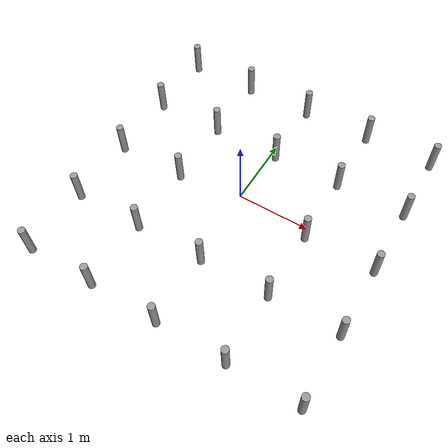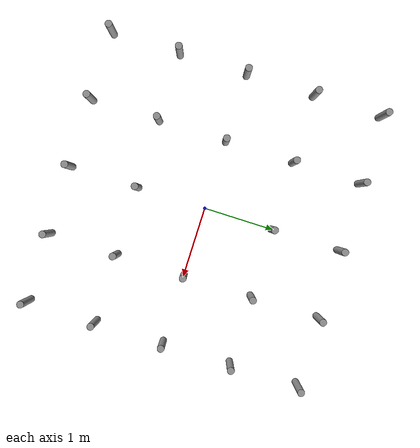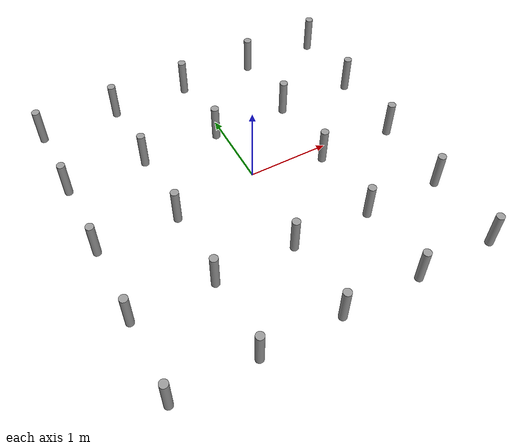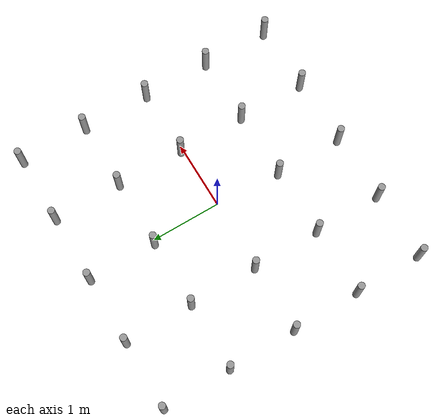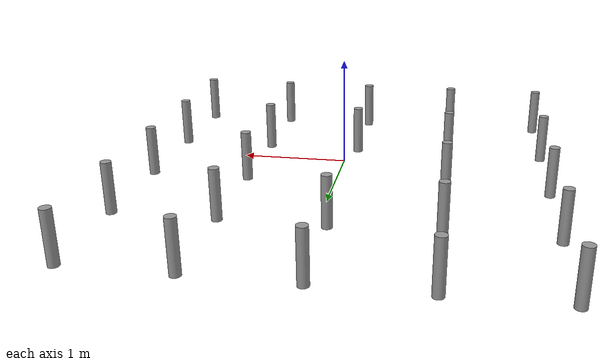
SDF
<sdf version="1.6">
 <model name="obstacles">
  <link name="link_0_clone">
   <inertial>
    <mass>1</mass>
    <inertia><ixx>0.145833</ixx><ixy>0</ixy><ixz>0</ixz><iyy>0.145833</iyy><iyz>0</iyz><izz>0.125</izz></inertia>
   </inertial>
   <pose>-2 0 0 0 -0 0</pose>
   <visual name="visual">
    <geometry><cylinder><radius>0.05</radius><length>0.5</length></cylinder></geometry>
    <material>
     <lighting>1</lighting>
     <script><uri>file://media/materials/scripts/gazebo.material</uri><name>Gazebo/Grey</name></script>
     <shader type="vertex"><normal_map>__default__</normal_map></shader>
     <ambient>0.3 0.3 0.3 1</ambient>
     <diffuse>0.7 0.7 0.7 1</diffuse>
     <specular>0.01 0.01 0.01 1</specular>
     <emissive>0 0 0 1</emissive>
    </material>
   </visual>
   <collision name="collision">
    <geometry><cylinder><radius>0.05</radius><length>0.5</length></cylinder></geometry>
    <surface>
     <friction>
      <ode><mu>1</mu><mu2>1</mu2><fdir1>0 0 0</fdir1><slip1>0</slip1><slip2>0</slip2></ode>
      <torsional>
       <coefficient>1</coefficient>
       <patch_radius>0</patch_radius>
       <surface_radius>0</surface_radius>
       <use_patch_radius>1</use_patch_radius>
       <ode><slip>0</slip></ode>
      </torsional>
     </friction>
     <bounce><restitution_coefficient>0</restitution_coefficient><threshold>1e+06</threshold></bounce>
     <contact>
      <collide_without_contact>0</collide_without_contact>
      <collide_without_contact_bitmask>1</collide_without_contact_bitmask>
      <collide_bitmask>1</collide_bitmask>
      <ode>
       <soft_cfm>0</soft_cfm>
       <soft_erp>0.2</soft_erp>
       <kp>1e+13</kp>
       <kd>1</kd>
       <max_vel>0.01</max_vel>
       <min_depth>0</min_depth>
      </ode>
      <bullet>
       <split_impulse>1</split_impulse>
       <split_impulse_penetration_threshold>-0.01</split_impulse_penetration_threshold>
       <soft_cfm>0</soft_cfm>
       <soft_erp>0.2</soft_erp>
       <kp>1e+13</kp>
       <kd>1</kd>
      </bullet>
     </contact>
    </surface>
   </collision>
  </link>
  <link name="link_0_clone_0">
   <inertial>
    <mass>1</mass>
    <inertia><ixx>0.145833</ixx><ixy>0</ixy><ixz>0</ixz><iyy>0.145833</iyy><iyz>0</iyz><izz>0.125</izz></inertia>
   </inertial>
   <pose>-1 0 0 0 -0 0</pose>
   <visual name="visual">
    <geometry><cylinder><radius>0.05</radius><length>0.5</length></cylinder></geometry>
    <material>
     <lighting>1</lighting>
     <script><uri>file://media/materials/scripts/gazebo.material</uri><name>Gazebo/Grey</name></script>
     <shader type="vertex"><normal_map>__default__</normal_map></shader>
     <ambient>0.3 0.3 0.3 1</ambient>
     <diffuse>0.7 0.7 0.7 1</diffuse>
     <specular>0.01 0.01 0.01 1</specular>
     <emissive>0 0 0 1</emissive>
    </material>
   </visual>
   <collision name="collision">
    <geometry><cylinder><radius>0.05</radius><length>0.5</length></cylinder></geometry>
    <surface>
     <friction>
      <ode><mu>1</mu><mu2>1</mu2><fdir1>0 0 0</fdir1><slip1>0</slip1><slip2>0</slip2></ode>
      <torsional>
       <coefficient>1</coefficient>
       <patch_radius>0</patch_radius>
       <surface_radius>0</surface_radius>
       <use_patch_radius>1</use_patch_radius>
       <ode><slip>0</slip></ode>
      </torsional>
     </friction>
     <bounce><restitution_coefficient>0</restitution_coefficient><threshold>1e+06</threshold></bounce>
     <contact>
      <collide_without_contact>0</collide_without_contact>
      <collide_without_contact_bitmask>1</collide_without_contact_bitmask>
      <collide_bitmask>1</collide_bitmask>
      <ode>
       <soft_cfm>0</soft_cfm>
       <soft_erp>0.2</soft_erp>
       <kp>1e+13</kp>
       <kd>1</kd>
       <max_vel>0.01</max_vel>
       <min_depth>0</min_depth>
      </ode>
      <bullet>
       <split_impulse>1</split_impulse>
       <split_impulse_penetration_threshold>-0.01</split_impulse_penetration_threshold>
       <soft_cfm>0</soft_cfm>
       <soft_erp>0.2</soft_erp>
       <kp>1e+13</kp>
       <kd>1</kd>
      </bullet>
     </contact>
    </surface>
   </collision>
  </link>
  <link name="link_0_clone_1">
   <inertial>
    <mass>1</mass>
    <inertia><ixx>0.145833</ixx><ixy>0</ixy><ixz>0</ixz><iyy>0.145833</iyy><iyz>0</iyz><izz>0.125</izz></inertia>
   </inertial>
   <pose>-2 -1 0 0 -0 0</pose>
   <visual name="visual">
    <geometry><cylinder><radius>0.05</radius><length>0.5</length></cylinder></geometry>
    <material>
     <lighting>1</lighting>
     <script><uri>file://media/materials/scripts/gazebo.material</uri><name>Gazebo/Grey</name></script>
     <shader type="vertex"><normal_map>__default__</normal_map></shader>
     <ambient>0.3 0.3 0.3 1</ambient>
     <diffuse>0.7 0.7 0.7 1</diffuse>
     <specular>0.01 0.01 0.01 1</specular>
     <emissive>0 0 0 1</emissive>
    </material>
   </visual>
   <collision name="collision">
    <geometry><cylinder><radius>0.05</radius><length>0.5</length></cylinder></geometry>
    <surface>
     <friction>
      <ode><mu>1</mu><mu2>1</mu2><fdir1>0 0 0</fdir1><slip1>0</slip1><slip2>0</slip2></ode>
      <torsional>
       <coefficient>1</coefficient>
       <patch_radius>0</patch_radius>
       <surface_radius>0</surface_radius>
       <use_patch_radius>1</use_patch_radius>
       <ode><slip>0</slip></ode>
      </torsional>
     </friction>
     <bounce><restitution_coefficient>0</restitution_coefficient><threshold>1e+06</threshold></bounce>
     <contact>
      <collide_without_contact>0</collide_without_contact>
      <collide_without_contact_bitmask>1</collide_without_contact_bitmask>
      <collide_bitmask>1</collide_bitmask>
      <ode>
       <soft_cfm>0</soft_cfm>
       <soft_erp>0.2</soft_erp>
       <kp>1e+13</kp>
       <kd>1</kd>
       <max_vel>0.01</max_vel>
       <min_depth>0</min_depth>
      </ode>
      <bullet>
       <split_impulse>1</split_impulse>
       <split_impulse_penetration_threshold>-0.01</split_impulse_penetration_threshold>
       <soft_cfm>0</soft_cfm>
       <soft_erp>0.2</soft_erp>
       <kp>1e+13</kp>
       <kd>1</kd>
      </bullet>
     </contact>
    </surface>
   </collision>
  </link>
  <link name="link_0_clone_10">
   <inertial>
    <mass>1</mass>
    <inertia><ixx>0.145833</ixx><ixy>0</ixy><ixz>0</ixz><iyy>0.145833</iyy><iyz>0</iyz><izz>0.125</izz></inertia>
   </inertial>
   <pose>2 -1 0 0 -0 0</pose>
   <visual name="visual">
    <geometry><cylinder><radius>0.05</radius><length>0.5</length></cylinder></geometry>
    <material>
     <lighting>1</lighting>
     <script><uri>file://media/materials/scripts/gazebo.material</uri><name>Gazebo/Grey</name></script>
     <shader type="vertex"><normal_map>__default__</normal_map></shader>
     <ambient>0.3 0.3 0.3 1</ambient>
     <diffuse>0.7 0.7 0.7 1</diffuse>
     <specular>0.01 0.01 0.01 1</specular>
     <emissive>0 0 0 1</emissive>
    </material>
   </visual>
   <collision name="collision">
    <geometry><cylinder><radius>0.05</radius><length>0.5</length></cylinder></geometry>
    <surface>
     <friction>
      <ode><mu>1</mu><mu2>1</mu2><fdir1>0 0 0</fdir1><slip1>0</slip1><slip2>0</slip2></ode>
      <torsional>
       <coefficient>1</coefficient>
       <patch_radius>0</patch_radius>
       <surface_radius>0</surface_radius>
       <use_patch_radius>1</use_patch_radius>
       <ode><slip>0</slip></ode>
      </torsional>
     </friction>
     <bounce><restitution_coefficient>0</restitution_coefficient><threshold>1e+06</threshold></bounce>
     <contact>
      <collide_without_contact>0</collide_without_contact>
      <collide_without_contact_bitmask>1</collide_without_contact_bitmask>
      <collide_bitmask>1</collide_bitmask>
      <ode>
       <soft_cfm>0</soft_cfm>
       <soft_erp>0.2</soft_erp>
       <kp>1e+13</kp>
       <kd>1</kd>
       <max_vel>0.01</max_vel>
       <min_depth>0</min_depth>
      </ode>
      <bullet>
       <split_impulse>1</split_impulse>
       <split_impulse_penetration_threshold>-0.01</split_impulse_penetration_threshold>
       <soft_cfm>0</soft_cfm>
       <soft_erp>0.2</soft_erp>
       <kp>1e+13</kp>
       <kd>1</kd>
      </bullet>
     </contact>
    </surface>
   </collision>
  </link>
  <link name="link_0_clone_11">
   <inertial>
    <mass>1</mass>
    <inertia><ixx>0.145833</ixx><ixy>0</ixy><ixz>0</ixz><iyy>0.145833</iyy><iyz>0</iyz><izz>0.125</izz></inertia>
   </inertial>
   <pose>2 0 0 0 -0 0</pose>
   <visual name="visual">
    <geometry><cylinder><radius>0.05</radius><length>0.5</length></cylinder></geometry>
    <material>
     <lighting>1</lighting>
     <script><uri>file://media/materials/scripts/gazebo.material</uri><name>Gazebo/Grey</name></script>
     <shader type="vertex"><normal_map>__default__</normal_map></shader>
     <ambient>0.3 0.3 0.3 1</ambient>
     <diffuse>0.7 0.7 0.7 1</diffuse>
     <specular>0.01 0.01 0.01 1</specular>
     <emissive>0 0 0 1</emissive>
    </material>
   </visual>
   <collision name="collision">
    <geometry><cylinder><radius>0.05</radius><length>0.5</length></cylinder></geometry>
    <surface>
     <friction>
      <ode><mu>1</mu><mu2>1</mu2><fdir1>0 0 0</fdir1><slip1>0</slip1><slip2>0</slip2></ode>
      <torsional>
       <coefficient>1</coefficient>
       <patch_radius>0</patch_radius>
       <surface_radius>0</surface_radius>
       <use_patch_radius>1</use_patch_radius>
       <ode><slip>0</slip></ode>
      </torsional>
     </friction>
     <bounce><restitution_coefficient>0</restitution_coefficient><threshold>1e+06</threshold></bounce>
     <contact>
      <collide_without_contact>0</collide_without_contact>
      <collide_without_contact_bitmask>1</collide_without_contact_bitmask>
      <collide_bitmask>1</collide_bitmask>
      <ode>
       <soft_cfm>0</soft_cfm>
       <soft_erp>0.2</soft_erp>
       <kp>1e+13</kp>
       <kd>1</kd>
       <max_vel>0.01</max_vel>
       <min_depth>0</min_depth>
      </ode>
      <bullet>
       <split_impulse>1</split_impulse>
       <split_impulse_penetration_threshold>-0.01</split_impulse_penetration_threshold>
       <soft_cfm>0</soft_cfm>
       <soft_erp>0.2</soft_erp>
       <kp>1e+13</kp>
       <kd>1</kd>
      </bullet>
     </contact>
    </surface>
   </collision>
  </link>
  <link name="link_0_clone_12">
   <inertial>
    <mass>1</mass>
    <inertia><ixx>0.145833</ixx><ixy>0</ixy><ixz>0</ixz><iyy>0.145833</iyy><iyz>0</iyz><izz>0.125</izz></inertia>
   </inertial>
   <pose>1 0 0 0 -0 0</pose>
   <visual name="visual">
    <geometry><cylinder><radius>0.05</radius><length>0.5</length></cylinder></geometry>
    <material>
     <lighting>1</lighting>
     <script><uri>file://media/materials/scripts/gazebo.material</uri><name>Gazebo/Grey</name></script>
     <shader type="vertex"><normal_map>__default__</normal_map></shader>
     <ambient>0.3 0.3 0.3 1</ambient>
     <diffuse>0.7 0.7 0.7 1</diffuse>
     <specular>0.01 0.01 0.01 1</specular>
     <emissive>0 0 0 1</emissive>
    </material>
   </visual>
   <collision name="collision">
    <geometry><cylinder><radius>0.05</radius><length>0.5</length></cylinder></geometry>
    <surface>
     <friction>
      <ode><mu>1</mu><mu2>1</mu2><fdir1>0 0 0</fdir1><slip1>0</slip1><slip2>0</slip2></ode>
      <torsional>
       <coefficient>1</coefficient>
       <patch_radius>0</patch_radius>
       <surface_radius>0</surface_radius>
       <use_patch_radius>1</use_patch_radius>
       <ode><slip>0</slip></ode>
      </torsional>
     </friction>
     <bounce><restitution_coefficient>0</restitution_coefficient><threshold>1e+06</threshold></bounce>
     <contact>
      <collide_without_contact>0</collide_without_contact>
      <collide_without_contact_bitmask>1</collide_without_contact_bitmask>
      <collide_bitmask>1</collide_bitmask>
      <ode>
       <soft_cfm>0</soft_cfm>
       <soft_erp>0.2</soft_erp>
       <kp>1e+13</kp>
       <kd>1</kd>
       <max_vel>0.01</max_vel>
       <min_depth>0</min_depth>
      </ode>
      <bullet>
       <split_impulse>1</split_impulse>
       <split_impulse_penetration_threshold>-0.01</split_impulse_penetration_threshold>
       <soft_cfm>0</soft_cfm>
       <soft_erp>0.2</soft_erp>
       <kp>1e+13</kp>
       <kd>1</kd>
      </bullet>
     </contact>
    </surface>
   </collision>
  </link>
  <link name="link_0_clone_13">
   <inertial>
    <mass>1</mass>
    <inertia><ixx>0.145833</ixx><ixy>0</ixy><ixz>0</ixz><iyy>0.145833</iyy><iyz>0</iyz><izz>0.125</izz></inertia>
   </inertial>
   <pose>2 1 0 0 -0 0</pose>
   <visual name="visual">
    <geometry><cylinder><radius>0.05</radius><length>0.5</length></cylinder></geometry>
    <material>
     <lighting>1</lighting>
     <script><uri>file://media/materials/scripts/gazebo.material</uri><name>Gazebo/Grey</name></script>
     <shader type="vertex"><normal_map>__default__</normal_map></shader>
     <ambient>0.3 0.3 0.3 1</ambient>
     <diffuse>0.7 0.7 0.7 1</diffuse>
     <specular>0.01 0.01 0.01 1</specular>
     <emissive>0 0 0 1</emissive>
    </material>
   </visual>
   <collision name="collision">
    <geometry><cylinder><radius>0.05</radius><length>0.5</length></cylinder></geometry>
    <surface>
     <friction>
      <ode><mu>1</mu><mu2>1</mu2><fdir1>0 0 0</fdir1><slip1>0</slip1><slip2>0</slip2></ode>
      <torsional>
       <coefficient>1</coefficient>
       <patch_radius>0</patch_radius>
       <surface_radius>0</surface_radius>
       <use_patch_radius>1</use_patch_radius>
       <ode><slip>0</slip></ode>
      </torsional>
     </friction>
     <bounce><restitution_coefficient>0</restitution_coefficient><threshold>1e+06</threshold></bounce>
     <contact>
      <collide_without_contact>0</collide_without_contact>
      <collide_without_contact_bitmask>1</collide_without_contact_bitmask>
      <collide_bitmask>1</collide_bitmask>
      <ode>
       <soft_cfm>0</soft_cfm>
       <soft_erp>0.2</soft_erp>
       <kp>1e+13</kp>
       <kd>1</kd>
       <max_vel>0.01</max_vel>
       <min_depth>0</min_depth>
      </ode>
      <bullet>
       <split_impulse>1</split_impulse>
       <split_impulse_penetration_threshold>-0.01</split_impulse_penetration_threshold>
       <soft_cfm>0</soft_cfm>
       <soft_erp>0.2</soft_erp>
       <kp>1e+13</kp>
       <kd>1</kd>
      </bullet>
     </contact>
    </surface>
   </collision>
  </link>
  <link name="link_0_clone_14">
   <inertial>
    <mass>1</mass>
    <inertia><ixx>0.145833</ixx><ixy>0</ixy><ixz>0</ixz><iyy>0.145833</iyy><iyz>0</iyz><izz>0.125</izz></inertia>
   </inertial>
   <pose>2 2 0 0 -0 0</pose>
   <visual name="visual">
    <geometry><cylinder><radius>0.05</radius><length>0.5</length></cylinder></geometry>
    <material>
     <lighting>1</lighting>
     <script><uri>file://media/materials/scripts/gazebo.material</uri><name>Gazebo/Grey</name></script>
     <shader type="vertex"><normal_map>__default__</normal_map></shader>
     <ambient>0.3 0.3 0.3 1</ambient>
     <diffuse>0.7 0.7 0.7 1</diffuse>
     <specular>0.01 0.01 0.01 1</specular>
     <emissive>0 0 0 1</emissive>
    </material>
   </visual>
   <collision name="collision">
    <geometry><cylinder><radius>0.05</radius><length>0.5</length></cylinder></geometry>
    <surface>
     <friction>
      <ode><mu>1</mu><mu2>1</mu2><fdir1>0 0 0</fdir1><slip1>0</slip1><slip2>0</slip2></ode>
      <torsional>
       <coefficient>1</coefficient>
       <patch_radius>0</patch_radius>
       <surface_radius>0</surface_radius>
       <use_patch_radius>1</use_patch_radius>
       <ode><slip>0</slip></ode>
      </torsional>
     </friction>
     <bounce><restitution_coefficient>0</restitution_coefficient><threshold>1e+06</threshold></bounce>
     <contact>
      <collide_without_contact>0</collide_without_contact>
      <collide_without_contact_bitmask>1</collide_without_contact_bitmask>
      <collide_bitmask>1</collide_bitmask>
      <ode>
       <soft_cfm>0</soft_cfm>
       <soft_erp>0.2</soft_erp>
       <kp>1e+13</kp>
       <kd>1</kd>
       <max_vel>0.01</max_vel>
       <min_depth>0</min_depth>
      </ode>
      <bullet>
       <split_impulse>1</split_impulse>
       <split_impulse_penetration_threshold>-0.01</split_impulse_penetration_threshold>
       <soft_cfm>0</soft_cfm>
       <soft_erp>0.2</soft_erp>
       <kp>1e+13</kp>
       <kd>1</kd>
      </bullet>
     </contact>
    </surface>
   </collision>
  </link>
  <link name="link_0_clone_15">
   <inertial>
    <mass>1</mass>
    <inertia><ixx>0.145833</ixx><ixy>0</ixy><ixz>0</ixz><iyy>0.145833</iyy><iyz>0</iyz><izz>0.125</izz></inertia>
   </inertial>
   <pose>1 2 0 0 -0 0</pose>
   <visual name="visual">
    <geometry><cylinder><radius>0.05</radius><length>0.5</length></cylinder></geometry>
    <material>
     <lighting>1</lighting>
     <script><uri>file://media/materials/scripts/gazebo.material</uri><name>Gazebo/Grey</name></script>
     <shader type="vertex"><normal_map>__default__</normal_map></shader>
     <ambient>0.3 0.3 0.3 1</ambient>
     <diffuse>0.7 0.7 0.7 1</diffuse>
     <specular>0.01 0.01 0.01 1</specular>
     <emissive>0 0 0 1</emissive>
    </material>
   </visual>
   <collision name="collision">
    <geometry><cylinder><radius>0.05</radius><length>0.5</length></cylinder></geometry>
    <surface>
     <friction>
      <ode><mu>1</mu><mu2>1</mu2><fdir1>0 0 0</fdir1><slip1>0</slip1><slip2>0</slip2></ode>
      <torsional>
       <coefficient>1</coefficient>
       <patch_radius>0</patch_radius>
       <surface_radius>0</surface_radius>
       <use_patch_radius>1</use_patch_radius>
       <ode><slip>0</slip></ode>
      </torsional>
     </friction>
     <bounce><restitution_coefficient>0</restitution_coefficient><threshold>1e+06</threshold></bounce>
     <contact>
      <collide_without_contact>0</collide_without_contact>
      <collide_without_contact_bitmask>1</collide_without_contact_bitmask>
      <collide_bitmask>1</collide_bitmask>
      <ode>
       <soft_cfm>0</soft_cfm>
       <soft_erp>0.2</soft_erp>
       <kp>1e+13</kp>
       <kd>1</kd>
       <max_vel>0.01</max_vel>
       <min_depth>0</min_depth>
      </ode>
      <bullet>
       <split_impulse>1</split_impulse>
       <split_impulse_penetration_threshold>-0.01</split_impulse_penetration_threshold>
       <soft_cfm>0</soft_cfm>
       <soft_erp>0.2</soft_erp>
       <kp>1e+13</kp>
       <kd>1</kd>
      </bullet>
     </contact>
    </surface>
   </collision>
  </link>
  <link name="link_0_clone_16">
   <inertial>
    <mass>1</mass>
    <inertia><ixx>0.145833</ixx><ixy>0</ixy><ixz>0</ixz><iyy>0.145833</iyy><iyz>0</iyz><izz>0.125</izz></inertia>
   </inertial>
   <pose>1 1 0 0 -0 0</pose>
   <visual name="visual">
    <geometry><cylinder><radius>0.05</radius><length>0.5</length></cylinder></geometry>
    <material>
     <lighting>1</lighting>
     <script><uri>file://media/materials/scripts/gazebo.material</uri><name>Gazebo/Grey</name></script>
     <shader type="vertex"><normal_map>__default__</normal_map></shader>
     <ambient>0.3 0.3 0.3 1</ambient>
     <diffuse>0.7 0.7 0.7 1</diffuse>
     <specular>0.01 0.01 0.01 1</specular>
     <emissive>0 0 0 1</emissive>
    </material>
   </visual>
   <collision name="collision">
    <geometry><cylinder><radius>0.05</radius><length>0.5</length></cylinder></geometry>
    <surface>
     <friction>
      <ode><mu>1</mu><mu2>1</mu2><fdir1>0 0 0</fdir1><slip1>0</slip1><slip2>0</slip2></ode>
      <torsional>
       <coefficient>1</coefficient>
       <patch_radius>0</patch_radius>
       <surface_radius>0</surface_radius>
       <use_patch_radius>1</use_patch_radius>
       <ode><slip>0</slip></ode>
      </torsional>
     </friction>
     <bounce><restitution_coefficient>0</restitution_coefficient><threshold>1e+06</threshold></bounce>
     <contact>
      <collide_without_contact>0</collide_without_contact>
      <collide_without_contact_bitmask>1</collide_without_contact_bitmask>
      <collide_bitmask>1</collide_bitmask>
      <ode>
       <soft_cfm>0</soft_cfm>
       <soft_erp>0.2</soft_erp>
       <kp>1e+13</kp>
       <kd>1</kd>
       <max_vel>0.01</max_vel>
       <min_depth>0</min_depth>
      </ode>
      <bullet>
       <split_impulse>1</split_impulse>
       <split_impulse_penetration_threshold>-0.01</split_impulse_penetration_threshold>
       <soft_cfm>0</soft_cfm>
       <soft_erp>0.2</soft_erp>
       <kp>1e+13</kp>
       <kd>1</kd>
      </bullet>
     </contact>
    </surface>
   </collision>
  </link>
  <link name="link_0_clone_17">
   <inertial>
    <mass>1</mass>
    <inertia><ixx>0.145833</ixx><ixy>0</ixy><ixz>0</ixz><iyy>0.145833</iyy><iyz>0</iyz><izz>0.125</izz></inertia>
   </inertial>
   <pose>0 2 0 0 -0 0</pose>
   <visual name="visual">
    <geometry><cylinder><radius>0.05</radius><length>0.5</length></cylinder></geometry>
    <material>
     <lighting>1</lighting>
     <script><uri>file://media/materials/scripts/gazebo.material</uri><name>Gazebo/Grey</name></script>
     <shader type="vertex"><normal_map>__default__</normal_map></shader>
     <ambient>0.3 0.3 0.3 1</ambient>
     <diffuse>0.7 0.7 0.7 1</diffuse>
     <specular>0.01 0.01 0.01 1</specular>
     <emissive>0 0 0 1</emissive>
    </material>
   </visual>
   <collision name="collision">
    <geometry><cylinder><radius>0.05</radius><length>0.5</length></cylinder></geometry>
    <surface>
     <friction>
      <ode><mu>1</mu><mu2>1</mu2><fdir1>0 0 0</fdir1><slip1>0</slip1><slip2>0</slip2></ode>
      <torsional>
       <coefficient>1</coefficient>
       <patch_radius>0</patch_radius>
       <surface_radius>0</surface_radius>
       <use_patch_radius>1</use_patch_radius>
       <ode><slip>0</slip></ode>
      </torsional>
     </friction>
     <bounce><restitution_coefficient>0</restitution_coefficient><threshold>1e+06</threshold></bounce>
     <contact>
      <collide_without_contact>0</collide_without_contact>
      <collide_without_contact_bitmask>1</collide_without_contact_bitmask>
      <collide_bitmask>1</collide_bitmask>
      <ode>
       <soft_cfm>0</soft_cfm>
       <soft_erp>0.2</soft_erp>
       <kp>1e+13</kp>
       <kd>1</kd>
       <max_vel>0.01</max_vel>
       <min_depth>0</min_depth>
      </ode>
      <bullet>
       <split_impulse>1</split_impulse>
       <split_impulse_penetration_threshold>-0.01</split_impulse_penetration_threshold>
       <soft_cfm>0</soft_cfm>
       <soft_erp>0.2</soft_erp>
       <kp>1e+13</kp>
       <kd>1</kd>
      </bullet>
     </contact>
    </surface>
   </collision>
  </link>
  <link name="link_0_clone_18">
   <inertial>
    <mass>1</mass>
    <inertia><ixx>0.145833</ixx><ixy>0</ixy><ixz>0</ixz><iyy>0.145833</iyy><iyz>0</iyz><izz>0.125</izz></inertia>
   </inertial>
   <pose>0 1 0 0 -0 0</pose>
   <visual name="visual">
    <geometry><cylinder><radius>0.05</radius><length>0.5</length></cylinder></geometry>
    <material>
     <lighting>1</lighting>
     <script><uri>file://media/materials/scripts/gazebo.material</uri><name>Gazebo/Grey</name></script>
     <shader type="vertex"><normal_map>__default__</normal_map></shader>
     <ambient>0.3 0.3 0.3 1</ambient>
     <diffuse>0.7 0.7 0.7 1</diffuse>
     <specular>0.01 0.01 0.01 1</specular>
     <emissive>0 0 0 1</emissive>
    </material>
   </visual>
   <collision name="collision">
    <geometry><cylinder><radius>0.05</radius><length>0.5</length></cylinder></geometry>
    <surface>
     <friction>
      <ode><mu>1</mu><mu2>1</mu2><fdir1>0 0 0</fdir1><slip1>0</slip1><slip2>0</slip2></ode>
      <torsional>
       <coefficient>1</coefficient>
       <patch_radius>0</patch_radius>
       <surface_radius>0</surface_radius>
       <use_patch_radius>1</use_patch_radius>
       <ode><slip>0</slip></ode>
      </torsional>
     </friction>
     <bounce><restitution_coefficient>0</restitution_coefficient><threshold>1e+06</threshold></bounce>
     <contact>
      <collide_without_contact>0</collide_without_contact>
      <collide_without_contact_bitmask>1</collide_without_contact_bitmask>
      <collide_bitmask>1</collide_bitmask>
      <ode>
       <soft_cfm>0</soft_cfm>
       <soft_erp>0.2</soft_erp>
       <kp>1e+13</kp>
       <kd>1</kd>
       <max_vel>0.01</max_vel>
       <min_depth>0</min_depth>
      </ode>
      <bullet>
       <split_impulse>1</split_impulse>
       <split_impulse_penetration_threshold>-0.01</split_impulse_penetration_threshold>
       <soft_cfm>0</soft_cfm>
       <soft_erp>0.2</soft_erp>
       <kp>1e+13</kp>
       <kd>1</kd>
      </bullet>
     </contact>
    </surface>
   </collision>
  </link>
  <link name="link_0_clone_19">
   <inertial>
    <mass>1</mass>
    <inertia><ixx>0.145833</ixx><ixy>0</ixy><ixz>0</ixz><iyy>0.145833</iyy><iyz>0</iyz><izz>0.125</izz></inertia>
   </inertial>
   <pose>-1 2 0 0 -0 0</pose>
   <visual name="visual">
    <geometry><cylinder><radius>0.05</radius><length>0.5</length></cylinder></geometry>
    <material>
     <lighting>1</lighting>
     <script><uri>file://media/materials/scripts/gazebo.material</uri><name>Gazebo/Grey</name></script>
     <shader type="vertex"><normal_map>__default__</normal_map></shader>
     <ambient>0.3 0.3 0.3 1</ambient>
     <diffuse>0.7 0.7 0.7 1</diffuse>
     <specular>0.01 0.01 0.01 1</specular>
     <emissive>0 0 0 1</emissive>
    </material>
   </visual>
   <collision name="collision">
    <geometry><cylinder><radius>0.05</radius><length>0.5</length></cylinder></geometry>
    <surface>
     <friction>
      <ode><mu>1</mu><mu2>1</mu2><fdir1>0 0 0</fdir1><slip1>0</slip1><slip2>0</slip2></ode>
      <torsional>
       <coefficient>1</coefficient>
       <patch_radius>0</patch_radius>
       <surface_radius>0</surface_radius>
       <use_patch_radius>1</use_patch_radius>
       <ode><slip>0</slip></ode>
      </torsional>
     </friction>
     <bounce><restitution_coefficient>0</restitution_coefficient><threshold>1e+06</threshold></bounce>
     <contact>
      <collide_without_contact>0</collide_without_contact>
      <collide_without_contact_bitmask>1</collide_without_contact_bitmask>
      <collide_bitmask>1</collide_bitmask>
      <ode>
       <soft_cfm>0</soft_cfm>
       <soft_erp>0.2</soft_erp>
       <kp>1e+13</kp>
       <kd>1</kd>
       <max_vel>0.01</max_vel>
       <min_depth>0</min_depth>
      </ode>
      <bullet>
       <split_impulse>1</split_impulse>
       <split_impulse_penetration_threshold>-0.01</split_impulse_penetration_threshold>
       <soft_cfm>0</soft_cfm>
       <soft_erp>0.2</soft_erp>
       <kp>1e+13</kp>
       <kd>1</kd>
      </bullet>
     </contact>
    </surface>
   </collision>
  </link>
  <link name="link_0_clone_2">
   <inertial>
    <mass>1</mass>
    <inertia><ixx>0.145833</ixx><ixy>0</ixy><ixz>0</ixz><iyy>0.145833</iyy><iyz>0</iyz><izz>0.125</izz></inertia>
   </inertial>
   <pose>-2 -2 0 0 -0 0</pose>
   <visual name="visual">
    <geometry><cylinder><radius>0.05</radius><length>0.5</length></cylinder></geometry>
    <material>
     <lighting>1</lighting>
     <script><uri>file://media/materials/scripts/gazebo.material</uri><name>Gazebo/Grey</name></script>
     <shader type="vertex"><normal_map>__default__</normal_map></shader>
     <ambient>0.3 0.3 0.3 1</ambient>
     <diffuse>0.7 0.7 0.7 1</diffuse>
     <specular>0.01 0.01 0.01 1</specular>
     <emissive>0 0 0 1</emissive>
    </material>
   </visual>
   <collision name="collision">
    <geometry><cylinder><radius>0.05</radius><length>0.5</length></cylinder></geometry>
    <surface>
     <friction>
      <ode><mu>1</mu><mu2>1</mu2><fdir1>0 0 0</fdir1><slip1>0</slip1><slip2>0</slip2></ode>
      <torsional>
       <coefficient>1</coefficient>
       <patch_radius>0</patch_radius>
       <surface_radius>0</surface_radius>
       <use_patch_radius>1</use_patch_radius>
       <ode><slip>0</slip></ode>
      </torsional>
     </friction>
     <bounce><restitution_coefficient>0</restitution_coefficient><threshold>1e+06</threshold></bounce>
     <contact>
      <collide_without_contact>0</collide_without_contact>
      <collide_without_contact_bitmask>1</collide_without_contact_bitmask>
      <collide_bitmask>1</collide_bitmask>
      <ode>
       <soft_cfm>0</soft_cfm>
       <soft_erp>0.2</soft_erp>
       <kp>1e+13</kp>
       <kd>1</kd>
       <max_vel>0.01</max_vel>
       <min_depth>0</min_depth>
      </ode>
      <bullet>
       <split_impulse>1</split_impulse>
       <split_impulse_penetration_threshold>-0.01</split_impulse_penetration_threshold>
       <soft_cfm>0</soft_cfm>
       <soft_erp>0.2</soft_erp>
       <kp>1e+13</kp>
       <kd>1</kd>
      </bullet>
     </contact>
    </surface>
   </collision>
  </link>
  <link name="link_0_clone_20">
   <inertial>
    <mass>1</mass>
    <inertia><ixx>0.145833</ixx><ixy>0</ixy><ixz>0</ixz><iyy>0.145833</iyy><iyz>0</iyz><izz>0.125</izz></inertia>
   </inertial>
   <pose>-1 1 0 0 -0 0</pose>
   <visual name="visual">
    <geometry><cylinder><radius>0.05</radius><length>0.5</length></cylinder></geometry>
    <material>
     <lighting>1</lighting>
     <script><uri>file://media/materials/scripts/gazebo.material</uri><name>Gazebo/Grey</name></script>
     <shader type="vertex"><normal_map>__default__</normal_map></shader>
     <ambient>0.3 0.3 0.3 1</ambient>
     <diffuse>0.7 0.7 0.7 1</diffuse>
     <specular>0.01 0.01 0.01 1</specular>
     <emissive>0 0 0 1</emissive>
    </material>
   </visual>
   <collision name="collision">
    <geometry><cylinder><radius>0.05</radius><length>0.5</length></cylinder></geometry>
    <surface>
     <friction>
      <ode><mu>1</mu><mu2>1</mu2><fdir1>0 0 0</fdir1><slip1>0</slip1><slip2>0</slip2></ode>
      <torsional>
       <coefficient>1</coefficient>
       <patch_radius>0</patch_radius>
       <surface_radius>0</surface_radius>
       <use_patch_radius>1</use_patch_radius>
       <ode><slip>0</slip></ode>
      </torsional>
     </friction>
     <bounce><restitution_coefficient>0</restitution_coefficient><threshold>1e+06</threshold></bounce>
     <contact>
      <collide_without_contact>0</collide_without_contact>
      <collide_without_contact_bitmask>1</collide_without_contact_bitmask>
      <collide_bitmask>1</collide_bitmask>
      <ode>
       <soft_cfm>0</soft_cfm>
       <soft_erp>0.2</soft_erp>
       <kp>1e+13</kp>
       <kd>1</kd>
       <max_vel>0.01</max_vel>
       <min_depth>0</min_depth>
      </ode>
      <bullet>
       <split_impulse>1</split_impulse>
       <split_impulse_penetration_threshold>-0.01</split_impulse_penetration_threshold>
       <soft_cfm>0</soft_cfm>
       <soft_erp>0.2</soft_erp>
       <kp>1e+13</kp>
       <kd>1</kd>
      </bullet>
     </contact>
    </surface>
   </collision>
  </link>
  <link name="link_0_clone_21">
   <inertial>
    <mass>1</mass>
    <inertia><ixx>0.145833</ixx><ixy>0</ixy><ixz>0</ixz><iyy>0.145833</iyy><iyz>0</iyz><izz>0.125</izz></inertia>
   </inertial>
   <pose>-2 2 0 0 -0 0</pose>
   <visual name="visual">
    <geometry><cylinder><radius>0.05</radius><length>0.5</length></cylinder></geometry>
    <material>
     <lighting>1</lighting>
     <script><uri>file://media/materials/scripts/gazebo.material</uri><name>Gazebo/Grey</name></script>
     <shader type="vertex"><normal_map>__default__</normal_map></shader>
     <ambient>0.3 0.3 0.3 1</ambient>
     <diffuse>0.7 0.7 0.7 1</diffuse>
     <specular>0.01 0.01 0.01 1</specular>
     <emissive>0 0 0 1</emissive>
    </material>
   </visual>
   <collision name="collision">
    <geometry><cylinder><radius>0.05</radius><length>0.5</length></cylinder></geometry>
    <surface>
     <friction>
      <ode><mu>1</mu><mu2>1</mu2><fdir1>0 0 0</fdir1><slip1>0</slip1><slip2>0</slip2></ode>
      <torsional>
       <coefficient>1</coefficient>
       <patch_radius>0</patch_radius>
       <surface_radius>0</surface_radius>
       <use_patch_radius>1</use_patch_radius>
       <ode><slip>0</slip></ode>
      </torsional>
     </friction>
     <bounce><restitution_coefficient>0</restitution_coefficient><threshold>1e+06</threshold></bounce>
     <contact>
      <collide_without_contact>0</collide_without_contact>
      <collide_without_contact_bitmask>1</collide_without_contact_bitmask>
      <collide_bitmask>1</collide_bitmask>
      <ode>
       <soft_cfm>0</soft_cfm>
       <soft_erp>0.2</soft_erp>
       <kp>1e+13</kp>
       <kd>1</kd>
       <max_vel>0.01</max_vel>
       <min_depth>0</min_depth>
      </ode>
      <bullet>
       <split_impulse>1</split_impulse>
       <split_impulse_penetration_threshold>-0.01</split_impulse_penetration_threshold>
       <soft_cfm>0</soft_cfm>
       <soft_erp>0.2</soft_erp>
       <kp>1e+13</kp>
       <kd>1</kd>
      </bullet>
     </contact>
    </surface>
   </collision>
  </link>
  <link name="link_0_clone_22">
   <inertial>
    <mass>1</mass>
    <inertia><ixx>0.145833</ixx><ixy>0</ixy><ixz>0</ixz><iyy>0.145833</iyy><iyz>0</iyz><izz>0.125</izz></inertia>
   </inertial>
   <pose>-2 1 0 0 -0 0</pose>
   <visual name="visual">
    <geometry><cylinder><radius>0.05</radius><length>0.5</length></cylinder></geometry>
    <material>
     <lighting>1</lighting>
     <script><uri>file://media/materials/scripts/gazebo.material</uri><name>Gazebo/Grey</name></script>
     <shader type="vertex"><normal_map>__default__</normal_map></shader>
     <ambient>0.3 0.3 0.3 1</ambient>
     <diffuse>0.7 0.7 0.7 1</diffuse>
     <specular>0.01 0.01 0.01 1</specular>
     <emissive>0 0 0 1</emissive>
    </material>
   </visual>
   <collision name="collision">
    <geometry><cylinder><radius>0.05</radius><length>0.5</length></cylinder></geometry>
    <surface>
     <friction>
      <ode><mu>1</mu><mu2>1</mu2><fdir1>0 0 0</fdir1><slip1>0</slip1><slip2>0</slip2></ode>
      <torsional>
       <coefficient>1</coefficient>
       <patch_radius>0</patch_radius>
       <surface_radius>0</surface_radius>
       <use_patch_radius>1</use_patch_radius>
       <ode><slip>0</slip></ode>
      </torsional>
     </friction>
     <bounce><restitution_coefficient>0</restitution_coefficient><threshold>1e+06</threshold></bounce>
     <contact>
      <collide_without_contact>0</collide_without_contact>
      <collide_without_contact_bitmask>1</collide_without_contact_bitmask>
      <collide_bitmask>1</collide_bitmask>
      <ode>
       <soft_cfm>0</soft_cfm>
       <soft_erp>0.2</soft_erp>
       <kp>1e+13</kp>
       <kd>1</kd>
       <max_vel>0.01</max_vel>
       <min_depth>0</min_depth>
      </ode>
      <bullet>
       <split_impulse>1</split_impulse>
       <split_impulse_penetration_threshold>-0.01</split_impulse_penetration_threshold>
       <soft_cfm>0</soft_cfm>
       <soft_erp>0.2</soft_erp>
       <kp>1e+13</kp>
       <kd>1</kd>
      </bullet>
     </contact>
    </surface>
   </collision>
  </link>
  <link name="link_0_clone_3">
   <inertial>
    <mass>1</mass>
    <inertia><ixx>0.145833</ixx><ixy>0</ixy><ixz>0</ixz><iyy>0.145833</iyy><iyz>0</iyz><izz>0.125</izz></inertia>
   </inertial>
   <pose>-1 -2 0 0 -0 0</pose>
   <visual name="visual">
    <geometry><cylinder><radius>0.05</radius><length>0.5</length></cylinder></geometry>
    <material>
     <lighting>1</lighting>
     <script><uri>file://media/materials/scripts/gazebo.material</uri><name>Gazebo/Grey</name></script>
     <shader type="vertex"><normal_map>__default__</normal_map></shader>
     <ambient>0.3 0.3 0.3 1</ambient>
     <diffuse>0.7 0.7 0.7 1</diffuse>
     <specular>0.01 0.01 0.01 1</specular>
     <emissive>0 0 0 1</emissive>
    </material>
   </visual>
   <collision name="collision">
    <geometry><cylinder><radius>0.05</radius><length>0.5</length></cylinder></geometry>
    <surface>
     <friction>
      <ode><mu>1</mu><mu2>1</mu2><fdir1>0 0 0</fdir1><slip1>0</slip1><slip2>0</slip2></ode>
      <torsional>
       <coefficient>1</coefficient>
       <patch_radius>0</patch_radius>
       <surface_radius>0</surface_radius>
       <use_patch_radius>1</use_patch_radius>
       <ode><slip>0</slip></ode>
      </torsional>
     </friction>
     <bounce><restitution_coefficient>0</restitution_coefficient><threshold>1e+06</threshold></bounce>
     <contact>
      <collide_without_contact>0</collide_without_contact>
      <collide_without_contact_bitmask>1</collide_without_contact_bitmask>
      <collide_bitmask>1</collide_bitmask>
      <ode>
       <soft_cfm>0</soft_cfm>
       <soft_erp>0.2</soft_erp>
       <kp>1e+13</kp>
       <kd>1</kd>
       <max_vel>0.01</max_vel>
       <min_depth>0</min_depth>
      </ode>
      <bullet>
       <split_impulse>1</split_impulse>
       <split_impulse_penetration_threshold>-0.01</split_impulse_penetration_threshold>
       <soft_cfm>0</soft_cfm>
       <soft_erp>0.2</soft_erp>
       <kp>1e+13</kp>
       <kd>1</kd>
      </bullet>
     </contact>
    </surface>
   </collision>
  </link>
  <link name="link_0_clone_4">
   <inertial>
    <mass>1</mass>
    <inertia><ixx>0.145833</ixx><ixy>0</ixy><ixz>0</ixz><iyy>0.145833</iyy><iyz>0</iyz><izz>0.125</izz></inertia>
   </inertial>
   <pose>-1 -1 0 0 -0 0</pose>
   <visual name="visual">
    <geometry><cylinder><radius>0.05</radius><length>0.5</length></cylinder></geometry>
    <material>
     <lighting>1</lighting>
     <script><uri>file://media/materials/scripts/gazebo.material</uri><name>Gazebo/Grey</name></script>
     <shader type="vertex"><normal_map>__default__</normal_map></shader>
     <ambient>0.3 0.3 0.3 1</ambient>
     <diffuse>0.7 0.7 0.7 1</diffuse>
     <specular>0.01 0.01 0.01 1</specular>
     <emissive>0 0 0 1</emissive>
    </material>
   </visual>
   <collision name="collision">
    <geometry><cylinder><radius>0.05</radius><length>0.5</length></cylinder></geometry>
    <surface>
     <friction>
      <ode><mu>1</mu><mu2>1</mu2><fdir1>0 0 0</fdir1><slip1>0</slip1><slip2>0</slip2></ode>
      <torsional>
       <coefficient>1</coefficient>
       <patch_radius>0</patch_radius>
       <surface_radius>0</surface_radius>
       <use_patch_radius>1</use_patch_radius>
       <ode><slip>0</slip></ode>
      </torsional>
     </friction>
     <bounce><restitution_coefficient>0</restitution_coefficient><threshold>1e+06</threshold></bounce>
     <contact>
      <collide_without_contact>0</collide_without_contact>
      <collide_without_contact_bitmask>1</collide_without_contact_bitmask>
      <collide_bitmask>1</collide_bitmask>
      <ode>
       <soft_cfm>0</soft_cfm>
       <soft_erp>0.2</soft_erp>
       <kp>1e+13</kp>
       <kd>1</kd>
       <max_vel>0.01</max_vel>
       <min_depth>0</min_depth>
      </ode>
      <bullet>
       <split_impulse>1</split_impulse>
       <split_impulse_penetration_threshold>-0.01</split_impulse_penetration_threshold>
       <soft_cfm>0</soft_cfm>
       <soft_erp>0.2</soft_erp>
       <kp>1e+13</kp>
       <kd>1</kd>
      </bullet>
     </contact>
    </surface>
   </collision>
  </link>
  <link name="link_0_clone_5">
   <inertial>
    <mass>1</mass>
    <inertia><ixx>0.145833</ixx><ixy>0</ixy><ixz>0</ixz><iyy>0.145833</iyy><iyz>0</iyz><izz>0.125</izz></inertia>
   </inertial>
   <pose>0 -2 0 0 -0 0</pose>
   <visual name="visual">
    <geometry><cylinder><radius>0.05</radius><length>0.5</length></cylinder></geometry>
    <material>
     <lighting>1</lighting>
     <script><uri>file://media/materials/scripts/gazebo.material</uri><name>Gazebo/Grey</name></script>
     <shader type="vertex"><normal_map>__default__</normal_map></shader>
     <ambient>0.3 0.3 0.3 1</ambient>
     <diffuse>0.7 0.7 0.7 1</diffuse>
     <specular>0.01 0.01 0.01 1</specular>
     <emissive>0 0 0 1</emissive>
    </material>
   </visual>
   <collision name="collision">
    <geometry><cylinder><radius>0.05</radius><length>0.5</length></cylinder></geometry>
    <surface>
     <friction>
      <ode><mu>1</mu><mu2>1</mu2><fdir1>0 0 0</fdir1><slip1>0</slip1><slip2>0</slip2></ode>
      <torsional>
       <coefficient>1</coefficient>
       <patch_radius>0</patch_radius>
       <surface_radius>0</surface_radius>
       <use_patch_radius>1</use_patch_radius>
       <ode><slip>0</slip></ode>
      </torsional>
     </friction>
     <bounce><restitution_coefficient>0</restitution_coefficient><threshold>1e+06</threshold></bounce>
     <contact>
      <collide_without_contact>0</collide_without_contact>
      <collide_without_contact_bitmask>1</collide_without_contact_bitmask>
      <collide_bitmask>1</collide_bitmask>
      <ode>
       <soft_cfm>0</soft_cfm>
       <soft_erp>0.2</soft_erp>
       <kp>1e+13</kp>
       <kd>1</kd>
       <max_vel>0.01</max_vel>
       <min_depth>0</min_depth>
      </ode>
      <bullet>
       <split_impulse>1</split_impulse>
       <split_impulse_penetration_threshold>-0.01</split_impulse_penetration_threshold>
       <soft_cfm>0</soft_cfm>
       <soft_erp>0.2</soft_erp>
       <kp>1e+13</kp>
       <kd>1</kd>
      </bullet>
     </contact>
    </surface>
   </collision>
  </link>
  <link name="link_0_clone_6">
   <inertial>
    <mass>1</mass>
    <inertia><ixx>0.145833</ixx><ixy>0</ixy><ixz>0</ixz><iyy>0.145833</iyy><iyz>0</iyz><izz>0.125</izz></inertia>
   </inertial>
   <pose>0 -1 0 0 -0 0</pose>
   <visual name="visual">
    <geometry><cylinder><radius>0.05</radius><length>0.5</length></cylinder></geometry>
    <material>
     <lighting>1</lighting>
     <script><uri>file://media/materials/scripts/gazebo.material</uri><name>Gazebo/Grey</name></script>
     <shader type="vertex"><normal_map>__default__</normal_map></shader>
     <ambient>0.3 0.3 0.3 1</ambient>
     <diffuse>0.7 0.7 0.7 1</diffuse>
     <specular>0.01 0.01 0.01 1</specular>
     <emissive>0 0 0 1</emissive>
    </material>
   </visual>
   <collision name="collision">
    <geometry><cylinder><radius>0.05</radius><length>0.5</length></cylinder></geometry>
    <surface>
     <friction>
      <ode><mu>1</mu><mu2>1</mu2><fdir1>0 0 0</fdir1><slip1>0</slip1><slip2>0</slip2></ode>
      <torsional>
       <coefficient>1</coefficient>
       <patch_radius>0</patch_radius>
       <surface_radius>0</surface_radius>
       <use_patch_radius>1</use_patch_radius>
       <ode><slip>0</slip></ode>
      </torsional>
     </friction>
     <bounce><restitution_coefficient>0</restitution_coefficient><threshold>1e+06</threshold></bounce>
     <contact>
      <collide_without_contact>0</collide_without_contact>
      <collide_without_contact_bitmask>1</collide_without_contact_bitmask>
      <collide_bitmask>1</collide_bitmask>
      <ode>
       <soft_cfm>0</soft_cfm>
       <soft_erp>0.2</soft_erp>
       <kp>1e+13</kp>
       <kd>1</kd>
       <max_vel>0.01</max_vel>
       <min_depth>0</min_depth>
      </ode>
      <bullet>
       <split_impulse>1</split_impulse>
       <split_impulse_penetration_threshold>-0.01</split_impulse_penetration_threshold>
       <soft_cfm>0</soft_cfm>
       <soft_erp>0.2</soft_erp>
       <kp>1e+13</kp>
       <kd>1</kd>
      </bullet>
     </contact>
    </surface>
   </collision>
  </link>
  <link name="link_0_clone_7">
   <inertial>
    <mass>1</mass>
    <inertia><ixx>0.145833</ixx><ixy>0</ixy><ixz>0</ixz><iyy>0.145833</iyy><iyz>0</iyz><izz>0.125</izz></inertia>
   </inertial>
   <pose>1 -2 0 0 -0 0</pose>
   <visual name="visual">
    <geometry><cylinder><radius>0.05</radius><length>0.5</length></cylinder></geometry>
    <material>
     <lighting>1</lighting>
     <script><uri>file://media/materials/scripts/gazebo.material</uri><name>Gazebo/Grey</name></script>
     <shader type="vertex"><normal_map>__default__</normal_map></shader>
     <ambient>0.3 0.3 0.3 1</ambient>
     <diffuse>0.7 0.7 0.7 1</diffuse>
     <specular>0.01 0.01 0.01 1</specular>
     <emissive>0 0 0 1</emissive>
    </material>
   </visual>
   <collision name="collision">
    <geometry><cylinder><radius>0.05</radius><length>0.5</length></cylinder></geometry>
    <surface>
     <friction>
      <ode><mu>1</mu><mu2>1</mu2><fdir1>0 0 0</fdir1><slip1>0</slip1><slip2>0</slip2></ode>
      <torsional>
       <coefficient>1</coefficient>
       <patch_radius>0</patch_radius>
       <surface_radius>0</surface_radius>
       <use_patch_radius>1</use_patch_radius>
       <ode><slip>0</slip></ode>
      </torsional>
     </friction>
     <bounce><restitution_coefficient>0</restitution_coefficient><threshold>1e+06</threshold></bounce>
     <contact>
      <collide_without_contact>0</collide_without_contact>
      <collide_without_contact_bitmask>1</collide_without_contact_bitmask>
      <collide_bitmask>1</collide_bitmask>
      <ode>
       <soft_cfm>0</soft_cfm>
       <soft_erp>0.2</soft_erp>
       <kp>1e+13</kp>
       <kd>1</kd>
       <max_vel>0.01</max_vel>
       <min_depth>0</min_depth>
      </ode>
      <bullet>
       <split_impulse>1</split_impulse>
       <split_impulse_penetration_threshold>-0.01</split_impulse_penetration_threshold>
       <soft_cfm>0</soft_cfm>
       <soft_erp>0.2</soft_erp>
       <kp>1e+13</kp>
       <kd>1</kd>
      </bullet>
     </contact>
    </surface>
   </collision>
  </link>
  <link name="link_0_clone_8">
   <inertial>
    <mass>1</mass>
    <inertia><ixx>0.145833</ixx><ixy>0</ixy><ixz>0</ixz><iyy>0.145833</iyy><iyz>0</iyz><izz>0.125</izz></inertia>
   </inertial>
   <pose>1 -1 0 0 -0 0</pose>
   <visual name="visual">
    <geometry><cylinder><radius>0.05</radius><length>0.5</length></cylinder></geometry>
    <material>
     <lighting>1</lighting>
     <script><uri>file://media/materials/scripts/gazebo.material</uri><name>Gazebo/Grey</name></script>
     <shader type="vertex"><normal_map>__default__</normal_map></shader>
     <ambient>0.3 0.3 0.3 1</ambient>
     <diffuse>0.7 0.7 0.7 1</diffuse>
     <specular>0.01 0.01 0.01 1</specular>
     <emissive>0 0 0 1</emissive>
    </material>
   </visual>
   <collision name="collision">
    <geometry><cylinder><radius>0.05</radius><length>0.5</length></cylinder></geometry>
    <surface>
     <friction>
      <ode><mu>1</mu><mu2>1</mu2><fdir1>0 0 0</fdir1><slip1>0</slip1><slip2>0</slip2></ode>
      <torsional>
       <coefficient>1</coefficient>
       <patch_radius>0</patch_radius>
       <surface_radius>0</surface_radius>
       <use_patch_radius>1</use_patch_radius>
       <ode><slip>0</slip></ode>
      </torsional>
     </friction>
     <bounce><restitution_coefficient>0</restitution_coefficient><threshold>1e+06</threshold></bounce>
     <contact>
      <collide_without_contact>0</collide_without_contact>
      <collide_without_contact_bitmask>1</collide_without_contact_bitmask>
      <collide_bitmask>1</collide_bitmask>
      <ode>
       <soft_cfm>0</soft_cfm>
       <soft_erp>0.2</soft_erp>
       <kp>1e+13</kp>
       <kd>1</kd>
       <max_vel>0.01</max_vel>
       <min_depth>0</min_depth>
      </ode>
      <bullet>
       <split_impulse>1</split_impulse>
       <split_impulse_penetration_threshold>-0.01</split_impulse_penetration_threshold>
       <soft_cfm>0</soft_cfm>
       <soft_erp>0.2</soft_erp>
       <kp>1e+13</kp>
       <kd>1</kd>
      </bullet>
     </contact>
    </surface>
   </collision>
  </link>
  <link name="link_0_clone_9">
   <inertial>
    <mass>1</mass>
    <inertia><ixx>0.145833</ixx><ixy>0</ixy><ixz>0</ixz><iyy>0.145833</iyy><iyz>0</iyz><izz>0.125</izz></inertia>
   </inertial>
   <pose>2 -2 0 0 -0 0</pose>
   <visual name="visual">
    <geometry><cylinder><radius>0.05</radius><length>0.5</length></cylinder></geometry>
    <material>
     <lighting>1</lighting>
     <script><uri>file://media/materials/scripts/gazebo.material</uri><name>Gazebo/Grey</name></script>
     <shader type="vertex"><normal_map>__default__</normal_map></shader>
     <ambient>0.3 0.3 0.3 1</ambient>
     <diffuse>0.7 0.7 0.7 1</diffuse>
     <specular>0.01 0.01 0.01 1</specular>
     <emissive>0 0 0 1</emissive>
    </material>
   </visual>
   <collision name="collision">
    <geometry><cylinder><radius>0.05</radius><length>0.5</length></cylinder></geometry>
    <surface>
     <friction>
      <ode><mu>1</mu><mu2>1</mu2><fdir1>0 0 0</fdir1><slip1>0</slip1><slip2>0</slip2></ode>
      <torsional>
       <coefficient>1</coefficient>
       <patch_radius>0</patch_radius>
       <surface_radius>0</surface_radius>
       <use_patch_radius>1</use_patch_radius>
       <ode><slip>0</slip></ode>
      </torsional>
     </friction>
     <bounce><restitution_coefficient>0</restitution_coefficient><threshold>1e+06</threshold></bounce>
     <contact>
      <collide_without_contact>0</collide_without_contact>
      <collide_without_contact_bitmask>1</collide_without_contact_bitmask>
      <collide_bitmask>1</collide_bitmask>
      <ode>
       <soft_cfm>0</soft_cfm>
       <soft_erp>0.2</soft_erp>
       <kp>1e+13</kp>
       <kd>1</kd>
       <max_vel>0.01</max_vel>
       <min_depth>0</min_depth>
      </ode>
      <bullet>
       <split_impulse>1</split_impulse>
       <split_impulse_penetration_threshold>-0.01</split_impulse_penetration_threshold>
       <soft_cfm>0</soft_cfm>
       <soft_erp>0.2</soft_erp>
       <kp>1e+13</kp>
       <kd>1</kd>
      </bullet>
     </contact>
    </surface>
   </collision>
  </link>
  <static>0</static>
 </model>
</sdf>
